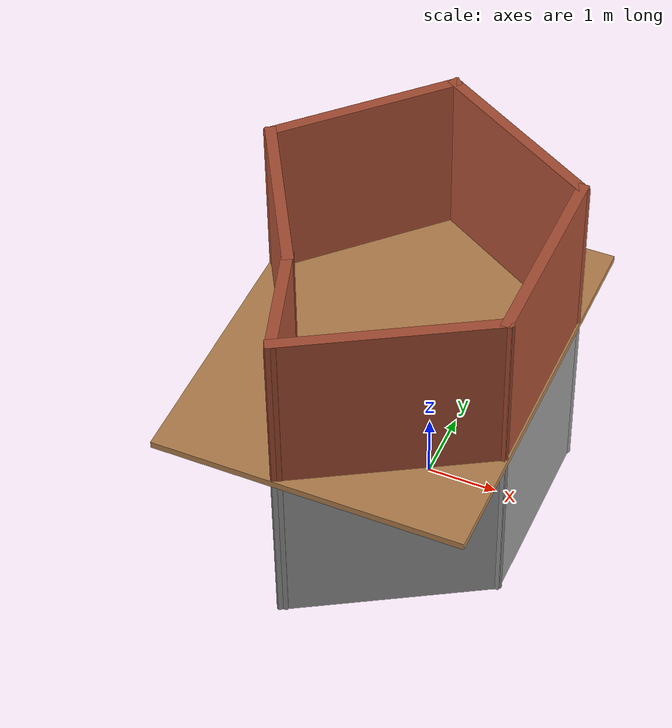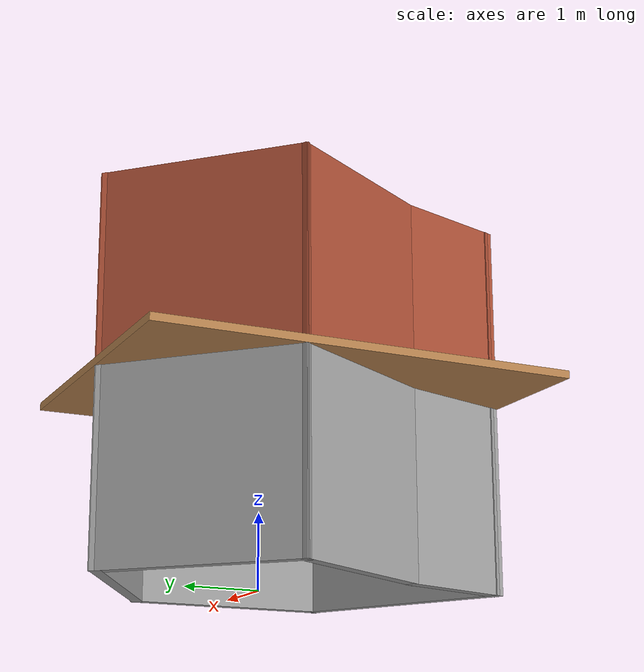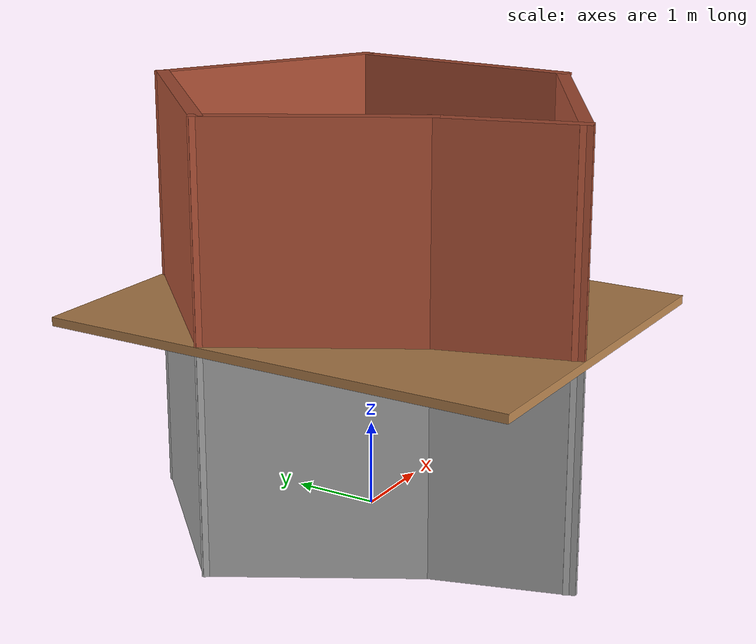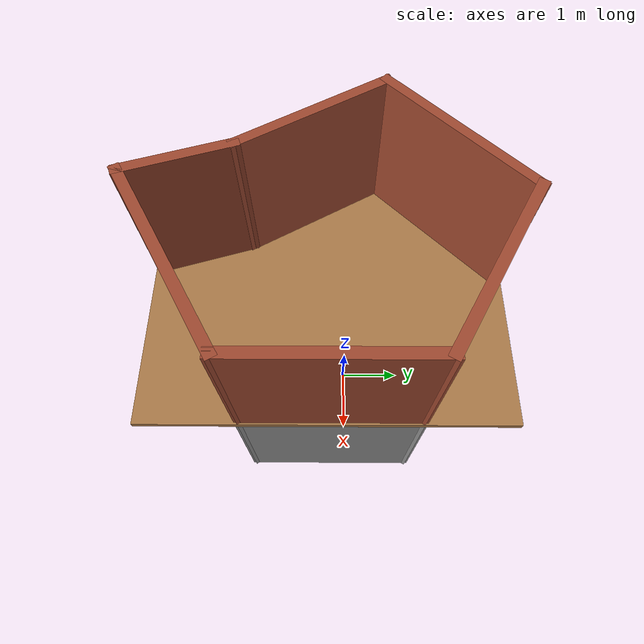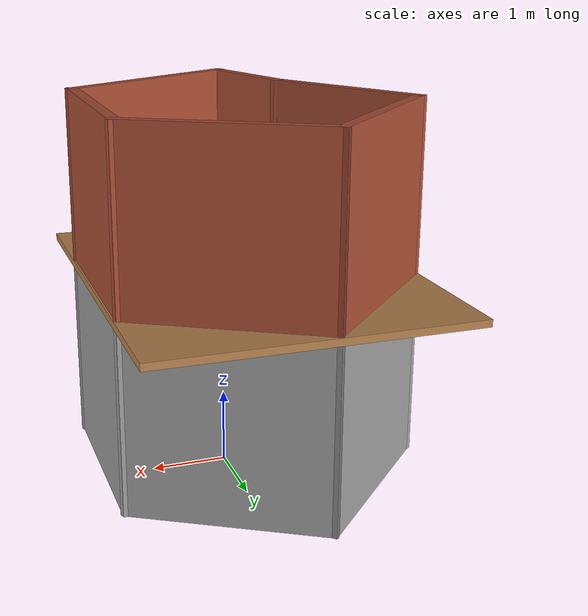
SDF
<?xml version='1.0'?>
<sdf version='1.6'>
  <model name='small_poly'>
    <pose frame=''>-0.448706 -0.305693 0 0 -0 0</pose>
    <link name='Floor_0'>
      <collision name='Floor_0_Collision'>
        <geometry>
          <box>
            <size>4.29866 5.53352 0.1</size>
          </box>
        </geometry>
        <pose frame=''>0 0 0.05 0 -0 0</pose>
      </collision>
      <visual name='Floor_0_Visual'>
        <pose frame=''>0 0 0.05 0 -0 0</pose>
        <geometry>
          <box>
            <size>4.29866 5.53352 0.1</size>
          </box>
        </geometry>
        <material>
          <script>
            <uri>file://media/materials/scripts/gazebo.material</uri>
            <name>Gazebo/Wood</name>
          </script>
          <ambient>0.996078 0.47451 0.0196078 1</ambient>
        </material>
        <meta>
          <layer>1</layer>
        </meta>
      </visual>
      <pose frame=''>-0 -0 2.5 0 -0 0</pose>
    </link>
    <link name='Wall_0'>
      <collision name='Wall_0_Collision'>
        <geometry>
          <box>
            <size>3 0.15 2.5</size>
          </box>
        </geometry>
        <pose frame=''>0 0 1.25 0 -0 0</pose>
      </collision>
      <visual name='Wall_0_Visual'>
        <pose frame=''>0 0 1.25 0 -0 0</pose>
        <geometry>
          <box>
            <size>3 0.15 2.5</size>
          </box>
        </geometry>
        <material>
          <script>
            <uri>file://media/materials/scripts/gazebo.material</uri>
            <name>Gazebo/Grey</name>
          </script>
          <ambient>1 1 1 1</ambient>
        </material>
        <meta>
          <layer>0</layer>
        </meta>
      </visual>
      <pose frame=''>0.812793 -1.95181 0 0 -0 0.523599</pose>
    </link>
    <link name='Wall_1'>
      <collision name='Wall_1_Collision'>
        <geometry>
          <box>
            <size>2.75 0.15 2.5</size>
          </box>
        </geometry>
        <pose frame=''>0 0 1.25 0 -0 0</pose>
      </collision>
      <visual name='Wall_1_Visual'>
        <pose frame=''>0 0 1.25 0 -0 0</pose>
        <geometry>
          <box>
            <size>2.75 0.15 2.5</size>
          </box>
        </geometry>
        <material>
          <script>
            <uri>file://media/materials/scripts/gazebo.material</uri>
            <name>Gazebo/Grey</name>
          </script>
          <ambient>1 1 1 1</ambient>
        </material>
        <meta>
          <layer>0</layer>
        </meta>
      </visual>
      <pose frame=''>2.04688 0.060693 0 0 -0 1.5708</pose>
    </link>
    <link name='Wall_10'>
      <collision name='Wall_10_Collision'>
        <geometry>
          <box>
            <size>2.75 0.15 2.5</size>
          </box>
        </geometry>
        <pose frame=''>0 0 1.25 0 -0 0</pose>
      </collision>
      <visual name='Wall_10_Visual'>
        <pose frame=''>0 0 1.25 0 -0 0</pose>
        <geometry>
          <box>
            <size>2.75 0.15 2.5</size>
          </box>
        </geometry>
        <material>
          <script>
            <uri>file://media/materials/scripts/gazebo.material</uri>
            <name>Gazebo/Bricks</name>
          </script>
          <ambient>1 1 1 1</ambient>
        </material>
        <meta>
          <layer>1</layer>
        </meta>
      </visual>
      <pose frame=''>-1.12403 1.74145 2.5 0 -0 -2.35619</pose>
    </link>
    <link name='Wall_11'>
      <collision name='Wall_11_Collision'>
        <geometry>
          <box>
            <size>2.5 0.15 2.5</size>
          </box>
        </geometry>
        <pose frame=''>0 0 1.25 0 -0 0</pose>
      </collision>
      <visual name='Wall_11_Visual'>
        <pose frame=''>0 0 1.25 0 -0 0</pose>
        <geometry>
          <box>
            <size>2.5 0.15 2.5</size>
          </box>
        </geometry>
        <material>
          <script>
            <uri>file://media/materials/scripts/gazebo.material</uri>
            <name>Gazebo/Bricks</name>
          </script>
          <ambient>1 1 1 1</ambient>
        </material>
        <meta>
          <layer>1</layer>
        </meta>
      </visual>
      <pose frame=''>-1.45576 -0.195365 2.5 0 -0 -1.0472</pose>
    </link>
    <link name='Wall_12'>
      <collision name='Wall_12_Collision'>
        <geometry>
          <box>
            <size>1.66863 0.15 2.5</size>
          </box>
        </geometry>
        <pose frame=''>0 0 1.25 0 -0 0</pose>
      </collision>
      <visual name='Wall_12_Visual'>
        <pose frame=''>0 0 1.25 0 -0 0</pose>
        <geometry>
          <box>
            <size>1.66863 0.15 2.5</size>
          </box>
        </geometry>
        <material>
          <script>
            <uri>file://media/materials/scripts/gazebo.material</uri>
            <name>Gazebo/Bricks</name>
          </script>
          <ambient>1 1 1 1</ambient>
        </material>
        <meta>
          <layer>1</layer>
        </meta>
      </visual>
      <pose frame=''>-0.644779 -1.93863 2.5 0 -0 -1.27205</pose>
    </link>
    <link name='Wall_2'>
      <collision name='Wall_2_Collision'>
        <geometry>
          <box>
            <size>2.75 0.15 2.5</size>
          </box>
        </geometry>
        <pose frame=''>0 0 1.25 0 -0 0</pose>
      </collision>
      <visual name='Wall_2_Visual'>
        <pose frame=''>0 0 1.25 0 -0 0</pose>
        <geometry>
          <box>
            <size>2.75 0.15 2.5</size>
          </box>
        </geometry>
        <material>
          <script>
            <uri>file://media/materials/scripts/gazebo.material</uri>
            <name>Gazebo/Grey</name>
          </script>
          <ambient>1 1 1 1</ambient>
        </material>
        <meta>
          <layer>0</layer>
        </meta>
      </visual>
      <pose frame=''>0.921046 2.01069 0 0 -0 2.61799</pose>
    </link>
    <link name='Wall_3'>
      <collision name='Wall_3_Collision'>
        <geometry>
          <box>
            <size>2.75 0.15 2.5</size>
          </box>
        </geometry>
        <pose frame=''>0 0 1.25 0 -0 0</pose>
      </collision>
      <visual name='Wall_3_Visual'>
        <pose frame=''>0 0 1.25 0 -0 0</pose>
        <geometry>
          <box>
            <size>2.75 0.15 2.5</size>
          </box>
        </geometry>
        <material>
          <script>
            <uri>file://media/materials/scripts/gazebo.material</uri>
            <name>Gazebo/Grey</name>
          </script>
          <ambient>1 1 1 1</ambient>
        </material>
        <meta>
          <layer>0</layer>
        </meta>
      </visual>
      <pose frame=''>-1.12403 1.74145 0 0 -0 -2.35619</pose>
    </link>
    <link name='Wall_4'>
      <collision name='Wall_4_Collision'>
        <geometry>
          <box>
            <size>2.5 0.15 2.5</size>
          </box>
        </geometry>
        <pose frame=''>0 0 1.25 0 -0 0</pose>
      </collision>
      <visual name='Wall_4_Visual'>
        <pose frame=''>0 0 1.25 0 -0 0</pose>
        <geometry>
          <box>
            <size>2.5 0.15 2.5</size>
          </box>
        </geometry>
        <material>
          <script>
            <uri>file://media/materials/scripts/gazebo.material</uri>
            <name>Gazebo/Grey</name>
          </script>
          <ambient>1 1 1 1</ambient>
        </material>
        <meta>
          <layer>0</layer>
        </meta>
      </visual>
      <pose frame=''>-1.45576 -0.195365 0 0 -0 -1.0472</pose>
    </link>
    <link name='Wall_5'>
      <collision name='Wall_5_Collision'>
        <geometry>
          <box>
            <size>1.66863 0.15 2.5</size>
          </box>
        </geometry>
        <pose frame=''>0 0 1.25 0 -0 0</pose>
      </collision>
      <visual name='Wall_5_Visual'>
        <pose frame=''>0 0 1.25 0 -0 0</pose>
        <geometry>
          <box>
            <size>1.66863 0.15 2.5</size>
          </box>
        </geometry>
        <material>
          <script>
            <uri>file://media/materials/scripts/gazebo.material</uri>
            <name>Gazebo/Grey</name>
          </script>
          <ambient>1 1 1 1</ambient>
        </material>
        <meta>
          <layer>0</layer>
        </meta>
      </visual>
      <pose frame=''>-0.644779 -1.93863 0 0 -0 -1.27205</pose>
    </link>
    <link name='Wall_7'>
      <collision name='Wall_7_Collision'>
        <geometry>
          <box>
            <size>3 0.15 2.5</size>
          </box>
        </geometry>
        <pose frame=''>0 0 1.25 0 -0 0</pose>
      </collision>
      <visual name='Wall_7_Visual'>
        <pose frame=''>0 0 1.25 0 -0 0</pose>
        <geometry>
          <box>
            <size>3 0.15 2.5</size>
          </box>
        </geometry>
        <material>
          <script>
            <uri>file://media/materials/scripts/gazebo.material</uri>
            <name>Gazebo/Bricks</name>
          </script>
          <ambient>1 1 1 1</ambient>
        </material>
        <meta>
          <layer>1</layer>
        </meta>
      </visual>
      <pose frame=''>0.812793 -1.95181 2.5 0 -0 0.523599</pose>
    </link>
    <link name='Wall_8'>
      <collision name='Wall_8_Collision'>
        <geometry>
          <box>
            <size>2.75 0.15 2.5</size>
          </box>
        </geometry>
        <pose frame=''>0 0 1.25 0 -0 0</pose>
      </collision>
      <visual name='Wall_8_Visual'>
        <pose frame=''>0 0 1.25 0 -0 0</pose>
        <geometry>
          <box>
            <size>2.75 0.15 2.5</size>
          </box>
        </geometry>
        <material>
          <script>
            <uri>file://media/materials/scripts/gazebo.material</uri>
            <name>Gazebo/Bricks</name>
          </script>
          <ambient>1 1 1 1</ambient>
        </material>
        <meta>
          <layer>1</layer>
        </meta>
      </visual>
      <pose frame=''>2.04688 0.060693 2.5 0 -0 1.5708</pose>
    </link>
    <link name='Wall_9'>
      <collision name='Wall_9_Collision'>
        <geometry>
          <box>
            <size>2.75 0.15 2.5</size>
          </box>
        </geometry>
        <pose frame=''>0 0 1.25 0 -0 0</pose>
      </collision>
      <visual name='Wall_9_Visual'>
        <pose frame=''>0 0 1.25 0 -0 0</pose>
        <geometry>
          <box>
            <size>2.75 0.15 2.5</size>
          </box>
        </geometry>
        <material>
          <script>
            <uri>file://media/materials/scripts/gazebo.material</uri>
            <name>Gazebo/Bricks</name>
          </script>
          <ambient>1 1 1 1</ambient>
        </material>
        <meta>
          <layer>1</layer>
        </meta>
      </visual>
      <pose frame=''>0.921046 2.01069 2.5 0 -0 2.61799</pose>
    </link>
    <static>1</static>
  </model>
</sdf>
